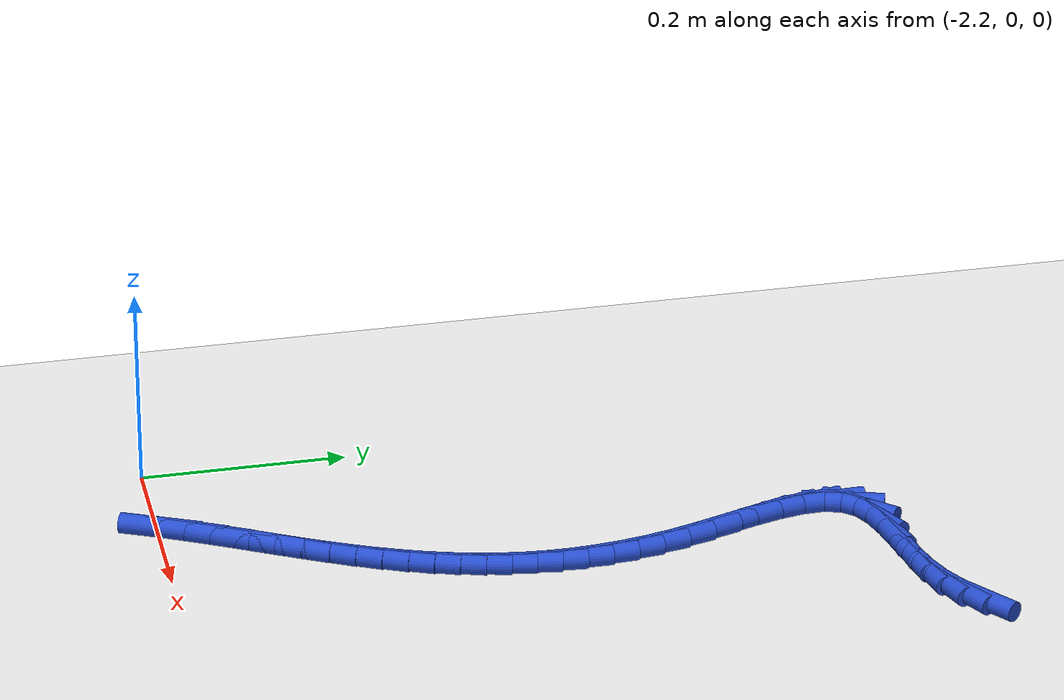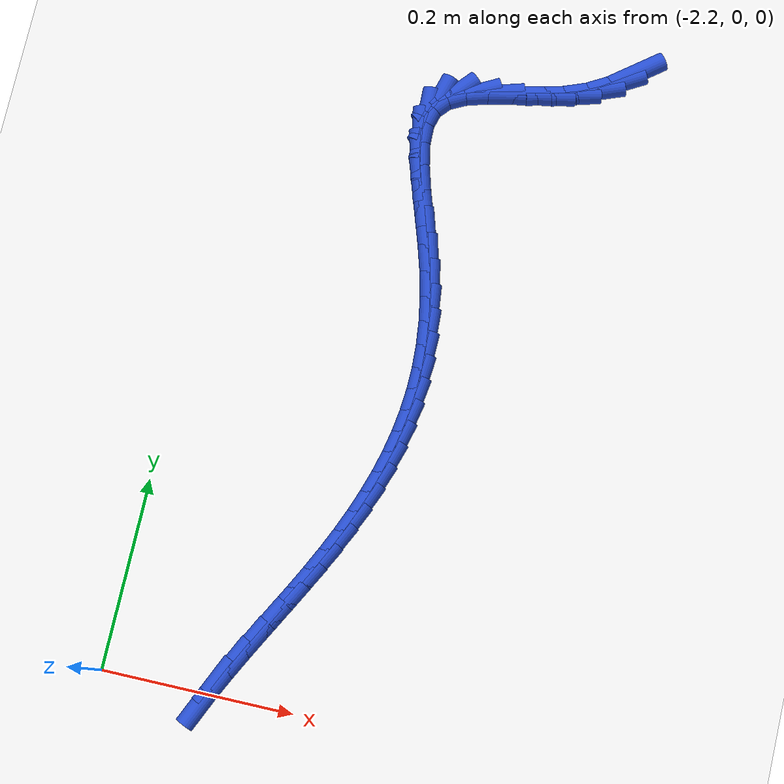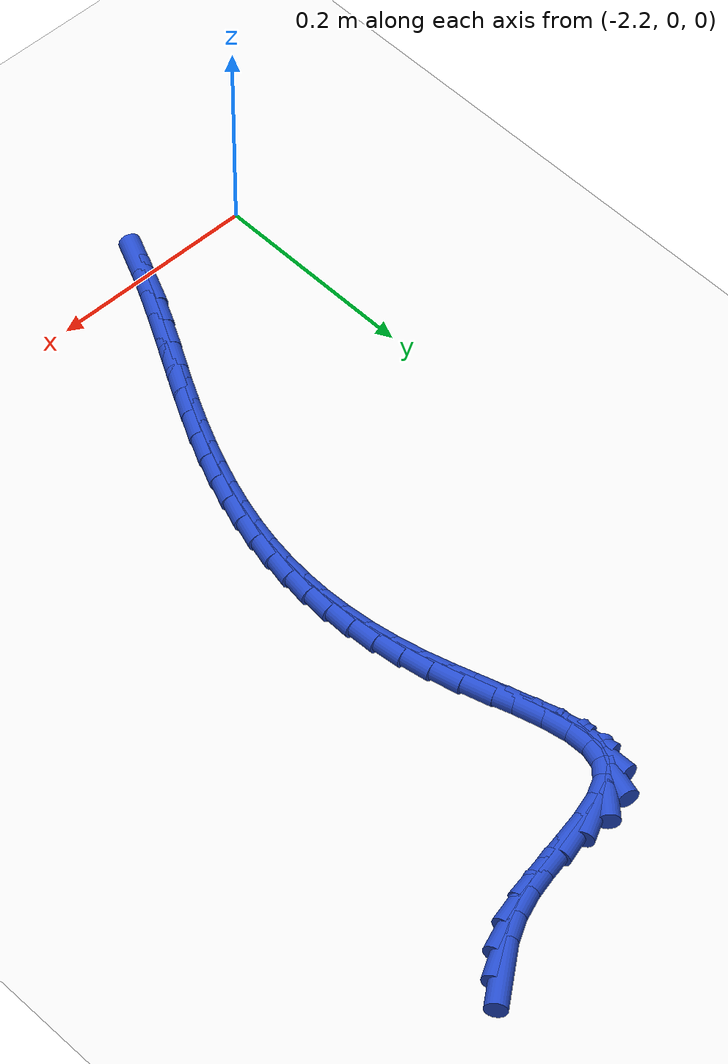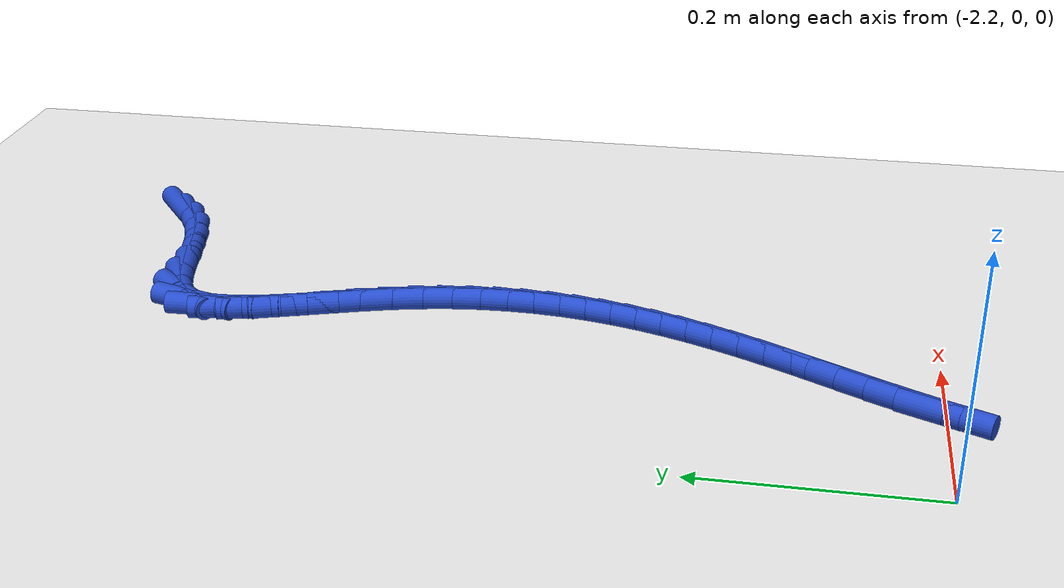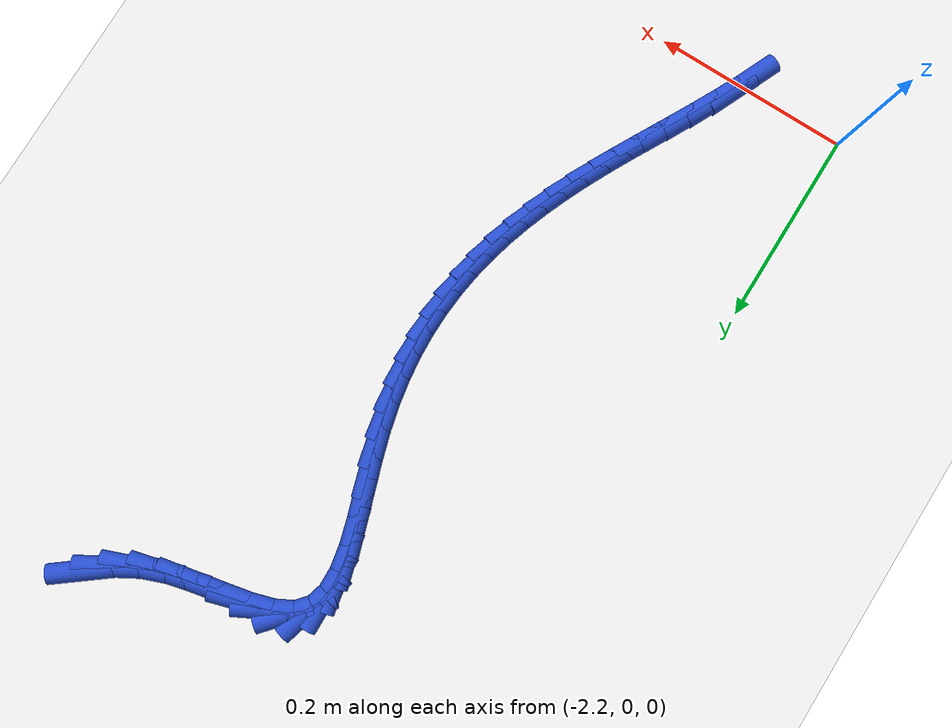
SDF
<sdf version="1.6">
 <world name="default">
  <model name="ground_plane">
   <static>1</static>
   <link name="link">
    <collision name="collision">
     <geometry><plane><normal>0 0 1</normal><size>100 100</size></plane></geometry>
     <surface><friction><ode><mu>100</mu><mu2>50</mu2></ode></friction></surface>
    </collision>
    <visual name="visual">
     <cast_shadows>0</cast_shadows>
     <geometry><plane><normal>0 0 1</normal><size>100 100</size></plane></geometry>
     <material>
      <script><uri>file://media/materials/scripts/gazebo.material</uri><name>Gazebo/WhiteGlow</name></script>
     </material>
    </visual>
   </link>
  </model>
  <model name="line">
   <link name="link_108">
    <pose>-1.8053109952263187 0.7344873514835405 0.01 0 1.57 0.6622374627955402</pose>
    <collision name="collision">
     <geometry><cylinder><radius>0.01</radius><length>0.08</length></cylinder></geometry>
    </collision>
    <visual name="visual">
     <material>
      <script><name>Gazebo/Blue</name><uri>file://media/materials/scripts/gazebo.material</uri></script>
     </material>
     <geometry><cylinder><radius>0.01</radius><length>0.08</length></cylinder></geometry>
    </visual>
   </link>
   <link name="link_109">
    <pose>-1.824508331692607 0.7195192587164501 0.01 0 1.57 0.5204782490880131</pose>
    <collision name="collision">
     <geometry><cylinder><radius>0.01</radius><length>0.08</length></cylinder></geometry>
    </collision>
    <visual name="visual">
     <material>
      <script><name>Gazebo/Blue</name><uri>file://media/materials/scripts/gazebo.material</uri></script>
     </material>
     <geometry><cylinder><radius>0.01</radius><length>0.08</length></cylinder></geometry>
    </visual>
   </link>
   <link name="link_110">
    <pose>-1.8460977314722293 0.7071442787470108 0.01 0 1.57 0.3679591404473845</pose>
    <collision name="collision">
     <geometry><cylinder><radius>0.01</radius><length>0.08</length></cylinder></geometry>
    </collision>
    <visual name="visual">
     <material>
      <script><name>Gazebo/Blue</name><uri>file://media/materials/scripts/gazebo.material</uri></script>
     </material>
     <geometry><cylinder><radius>0.01</radius><length>0.08</length></cylinder></geometry>
    </visual>
   </link>
   <link name="link_111">
    <pose>-1.8704258876636788 0.6977653577108172 0.01 0 1.57 0.24989308642798175</pose>
    <collision name="collision">
     <geometry><cylinder><radius>0.01</radius><length>0.08</length></cylinder></geometry>
    </collision>
    <visual name="visual">
     <material>
      <script><name>Gazebo/Blue</name><uri>file://media/materials/scripts/gazebo.material</uri></script>
     </material>
     <geometry><cylinder><radius>0.01</radius><length>0.08</length></cylinder></geometry>
    </visual>
   </link>
   <link name="link_112">
    <pose>-1.8969097070250405 0.691005944402274 0.01 0 1.57 0.19856480841650992</pose>
    <collision name="collision">
     <geometry><cylinder><radius>0.01</radius><length>0.08</length></cylinder></geometry>
    </collision>
    <visual name="visual">
     <material>
      <script><name>Gazebo/Blue</name><uri>file://media/materials/scripts/gazebo.material</uri></script>
     </material>
     <geometry><cylinder><radius>0.01</radius><length>0.08</length></cylinder></geometry>
    </visual>
   </link>
   <link name="link_113">
    <pose>-1.9238801306113884 0.685579055464513 0.01 0 1.57 0.20812177934216064</pose>
    <collision name="collision">
     <geometry><cylinder><radius>0.01</radius><length>0.08</length></cylinder></geometry>
    </collision>
    <visual name="visual">
     <material>
      <script><name>Gazebo/Blue</name><uri>file://media/materials/scripts/gazebo.material</uri></script>
     </material>
     <geometry><cylinder><radius>0.01</radius><length>0.08</length></cylinder></geometry>
    </visual>
   </link>
   <link name="link_114">
    <pose>-1.949606599198654 0.6801461480565231 0.01 0 1.57 0.28951541255237295</pose>
    <collision name="collision">
     <geometry><cylinder><radius>0.01</radius><length>0.08</length></cylinder></geometry>
    </collision>
    <visual name="visual">
     <material>
      <script><name>Gazebo/Blue</name><uri>file://media/materials/scripts/gazebo.material</uri></script>
     </material>
     <geometry><cylinder><radius>0.01</radius><length>0.08</length></cylinder></geometry>
    </visual>
   </link>
   <link name="link_115">
    <pose>-1.9723585535627683 0.6733686793372937 0.01 0 1.57 0.4828369467160327</pose>
    <collision name="collision">
     <geometry><cylinder><radius>0.01</radius><length>0.08</length></cylinder></geometry>
    </collision>
    <visual name="visual">
     <material>
      <script><name>Gazebo/Blue</name><uri>file://media/materials/scripts/gazebo.material</uri></script>
     </material>
     <geometry><cylinder><radius>0.01</radius><length>0.08</length></cylinder></geometry>
    </visual>
   </link>
   <link name="link_116">
    <pose>-1.9904054344796633 0.6639081064658142 0.01 0 1.57 0.8565495180858365</pose>
    <collision name="collision">
     <geometry><cylinder><radius>0.01</radius><length>0.08</length></cylinder></geometry>
    </collision>
    <visual name="visual">
     <material>
      <script><name>Gazebo/Blue</name><uri>file://media/materials/scripts/gazebo.material</uri></script>
     </material>
     <geometry><cylinder><radius>0.01</radius><length>0.08</length></cylinder></geometry>
    </visual>
   </link>
   <link name="link_117">
    <pose>-2.002064653937652 0.6504594035342619 0.01 0 1.57 1.2988927472984633</pose>
    <collision name="collision">
     <geometry><cylinder><radius>0.01</radius><length>0.08</length></cylinder></geometry>
    </collision>
    <visual name="visual">
     <material>
      <script><name>Gazebo/Blue</name><uri>file://media/materials/scripts/gazebo.material</uri></script>
     </material>
     <geometry><cylinder><radius>0.01</radius><length>0.08</length></cylinder></geometry>
    </visual>
   </link>
   <link name="link_118">
    <pose>-2.0070232431237005 0.6326744817830453 0.01 0 1.57 -1.5465552052424607</pose>
    <collision name="collision">
     <geometry><cylinder><radius>0.01</radius><length>0.08</length></cylinder></geometry>
    </collision>
    <visual name="visual">
     <material>
      <script><name>Gazebo/Blue</name><uri>file://media/materials/scripts/gazebo.material</uri></script>
     </material>
     <geometry><cylinder><radius>0.01</radius><length>0.08</length></cylinder></geometry>
    </visual>
   </link>
   <link name="link_119">
    <pose>-2.0065044816137436 0.6112786114955563 0.01 0 1.57 -1.3795022214706028</pose>
    <collision name="collision">
     <geometry><cylinder><radius>0.01</radius><length>0.08</length></cylinder></geometry>
    </collision>
    <visual name="visual">
     <material>
      <script><name>Gazebo/Blue</name><uri>file://media/materials/scripts/gazebo.material</uri></script>
     </material>
     <geometry><cylinder><radius>0.01</radius><length>0.08</length></cylinder></geometry>
    </visual>
   </link>
   <link name="link_120">
    <pose>-2.001813083800921 0.5870539605233711 0.01 0 1.57 -1.2906239177172265</pose>
    <collision name="collision">
     <geometry><cylinder><radius>0.01</radius><length>0.08</length></cylinder></geometry>
    </collision>
    <visual name="visual">
     <material>
      <script><name>Gazebo/Blue</name><uri>file://media/materials/scripts/gazebo.material</uri></script>
     </material>
     <geometry><cylinder><radius>0.01</radius><length>0.08</length></cylinder></geometry>
    </visual>
   </link>
   <link name="link_121">
    <pose>-1.9942537640783735 0.5607826967180661 0.01 0 1.57 -1.2508786244213406</pose>
    <collision name="collision">
     <geometry><cylinder><radius>0.01</radius><length>0.08</length></cylinder></geometry>
    </collision>
    <visual name="visual">
     <material>
      <script><name>Gazebo/Blue</name><uri>file://media/materials/scripts/gazebo.material</uri></script>
     </material>
     <geometry><cylinder><radius>0.01</radius><length>0.08</length></cylinder></geometry>
    </visual>
   </link>
   <link name="link_122">
    <pose>-1.9851312368392382 0.5332469879312173 0.01 0 1.57 -1.2477071399209498</pose>
    <collision name="collision">
     <geometry><cylinder><radius>0.01</radius><length>0.08</length></cylinder></geometry>
    </collision>
    <visual name="visual">
     <material>
      <script><name>Gazebo/Blue</name><uri>file://media/materials/scripts/gazebo.material</uri></script>
     </material>
     <geometry><cylinder><radius>0.01</radius><length>0.08</length></cylinder></geometry>
    </visual>
   </link>
   <link name="link_123">
    <pose>-1.975750216476657 0.5052290020144008 0.01 0 1.57 -1.2785182778924722</pose>
    <collision name="collision">
     <geometry><cylinder><radius>0.01</radius><length>0.08</length></cylinder></geometry>
    </collision>
    <visual name="visual">
     <material>
      <script><name>Gazebo/Blue</name><uri>file://media/materials/scripts/gazebo.material</uri></script>
     </material>
     <geometry><cylinder><radius>0.01</radius><length>0.08</length></cylinder></geometry>
    </visual>
   </link>
   <link name="link_124">
    <pose>-1.9674087273088567 0.47750677862062396 0.01 0 1.57 -1.3343831985726784</pose>
    <collision name="collision">
     <geometry><cylinder><radius>0.01</radius><length>0.08</length></cylinder></geometry>
    </collision>
    <visual name="visual">
     <material>
      <script><name>Gazebo/Blue</name><uri>file://media/materials/scripts/gazebo.material</uri></script>
     </material>
     <geometry><cylinder><radius>0.01</radius><length>0.08</length></cylinder></geometry>
    </visual>
   </link>
   <link name="link_125">
    <pose>-1.9609159633881825 0.45055671826864624 0.01 0 1.57 -1.3952531316483592</pose>
    <collision name="collision">
     <geometry><cylinder><radius>0.01</radius><length>0.08</length></cylinder></geometry>
    </collision>
    <visual name="visual">
     <material>
      <script><name>Gazebo/Blue</name><uri>file://media/materials/scripts/gazebo.material</uri></script>
     </material>
     <geometry><cylinder><radius>0.01</radius><length>0.08</length></cylinder></geometry>
    </visual>
   </link>
   <link name="link_126">
    <pose>-1.9562683643721357 0.42435370070585493 0.01 0 1.57 -1.4583490908015406</pose>
    <collision name="collision">
     <geometry><cylinder><radius>0.01</radius><length>0.08</length></cylinder></geometry>
    </collision>
    <visual name="visual">
     <material>
      <script><name>Gazebo/Blue</name><uri>file://media/materials/scripts/gazebo.material</uri></script>
     </material>
     <geometry><cylinder><radius>0.01</radius><length>0.08</length></cylinder></geometry>
    </visual>
   </link>
   <link name="link_127">
    <pose>-1.9533855981835822 0.39882523267271464 0.01 0 1.57 -1.522761186719462</pose>
    <collision name="collision">
     <geometry><cylinder><radius>0.01</radius><length>0.08</length></cylinder></geometry>
    </collision>
    <visual name="visual">
     <material>
      <script><name>Gazebo/Blue</name><uri>file://media/materials/scripts/gazebo.material</uri></script>
     </material>
     <geometry><cylinder><radius>0.01</radius><length>0.08</length></cylinder></geometry>
    </visual>
   </link>
   <link name="link_128">
    <pose>-1.9521873327453905 0.3738988209096904 0.01 0 1.57 1.554160334456409</pose>
    <collision name="collision">
     <geometry><cylinder><radius>0.01</radius><length>0.08</length></cylinder></geometry>
    </collision>
    <visual name="visual">
     <material>
      <script><name>Gazebo/Blue</name><uri>file://media/materials/scripts/gazebo.material</uri></script>
     </material>
     <geometry><cylinder><radius>0.01</radius><length>0.08</length></cylinder></geometry>
    </visual>
   </link>
   <link name="link_129">
    <pose>-1.952593235980428 0.3495019721572474 0.01 0 1.57 1.4903621486001504</pose>
    <collision name="collision">
     <geometry><cylinder><radius>0.01</radius><length>0.08</length></cylinder></geometry>
    </collision>
    <visual name="visual">
     <material>
      <script><name>Gazebo/Blue</name><uri>file://media/materials/scripts/gazebo.material</uri></script>
     </material>
     <geometry><cylinder><radius>0.01</radius><length>0.08</length></cylinder></geometry>
    </visual>
   </link>
   <link name="link_130">
    <pose>-1.9545229758115608 0.32556219315585055 0.01 0 1.57 1.4285574912915306</pose>
    <collision name="collision">
     <geometry><cylinder><radius>0.01</radius><length>0.08</length></cylinder></geometry>
    </collision>
    <visual name="visual">
     <material>
      <script><name>Gazebo/Blue</name><uri>file://media/materials/scripts/gazebo.material</uri></script>
     </material>
     <geometry><cylinder><radius>0.01</radius><length>0.08</length></cylinder></geometry>
    </visual>
   </link>
   <link name="link_131">
    <pose>-1.9578962201616572 0.30200699064596487 0.01 0 1.57 1.3697715362862108</pose>
    <collision name="collision">
     <geometry><cylinder><radius>0.01</radius><length>0.08</length></cylinder></geometry>
    </collision>
    <visual name="visual">
     <material>
      <script><name>Gazebo/Blue</name><uri>file://media/materials/scripts/gazebo.material</uri></script>
     </material>
     <geometry><cylinder><radius>0.01</radius><length>0.08</length></cylinder></geometry>
    </visual>
   </link>
   <link name="link_132">
    <pose>-1.9626326369535854 0.2787638713680556 0.01 0 1.57 1.3148677558112576</pose>
    <collision name="collision">
     <geometry><cylinder><radius>0.01</radius><length>0.08</length></cylinder></geometry>
    </collision>
    <visual name="visual">
     <material>
      <script><name>Gazebo/Blue</name><uri>file://media/materials/scripts/gazebo.material</uri></script>
     </material>
     <geometry><cylinder><radius>0.01</radius><length>0.08</length></cylinder></geometry>
    </visual>
   </link>
   <link name="link_133">
    <pose>-1.9686518941102118 0.2557603420625881 0.01 0 1.57 1.2645089504557332</pose>
    <collision name="collision">
     <geometry><cylinder><radius>0.01</radius><length>0.08</length></cylinder></geometry>
    </collision>
    <visual name="visual">
     <material>
      <script><name>Gazebo/Blue</name><uri>file://media/materials/scripts/gazebo.material</uri></script>
     </material>
     <geometry><cylinder><radius>0.01</radius><length>0.08</length></cylinder></geometry>
    </visual>
   </link>
   <link name="link_134">
    <pose>-1.975873659554404 0.23292390947002634 0.01 0 1.57 1.2191472417126001</pose>
    <collision name="collision">
     <geometry><cylinder><radius>0.01</radius><length>0.08</length></cylinder></geometry>
    </collision>
    <visual name="visual">
     <material>
      <script><name>Gazebo/Blue</name><uri>file://media/materials/scripts/gazebo.material</uri></script>
     </material>
     <geometry><cylinder><radius>0.01</radius><length>0.08</length></cylinder></geometry>
    </visual>
   </link>
   <link name="link_135">
    <pose>-1.9842176012090298 0.21018208033083607 0.01 0 1.57 1.1790379566555005</pose>
    <collision name="collision">
     <geometry><cylinder><radius>0.01</radius><length>0.08</length></cylinder></geometry>
    </collision>
    <visual name="visual">
     <material>
      <script><name>Gazebo/Blue</name><uri>file://media/materials/scripts/gazebo.material</uri></script>
     </material>
     <geometry><cylinder><radius>0.01</radius><length>0.08</length></cylinder></geometry>
    </visual>
   </link>
   <link name="link_136">
    <pose>-1.9936033869969563 0.18746236138548222 0.01 0 1.57 1.14426887671455</pose>
    <collision name="collision">
     <geometry><cylinder><radius>0.01</radius><length>0.08</length></cylinder></geometry>
    </collision>
    <visual name="visual">
     <material>
      <script><name>Gazebo/Blue</name><uri>file://media/materials/scripts/gazebo.material</uri></script>
     </material>
     <geometry><cylinder><radius>0.01</radius><length>0.08</length></cylinder></geometry>
    </visual>
   </link>
   <link name="link_137">
    <pose>-2.0039506848410507 0.1646922593744298 0.01 0 1.57 1.114854565920181</pose>
    <collision name="collision">
     <geometry><cylinder><radius>0.01</radius><length>0.08</length></cylinder></geometry>
    </collision>
    <visual name="visual">
     <material>
      <script><name>Gazebo/Blue</name><uri>file://media/materials/scripts/gazebo.material</uri></script>
     </material>
     <geometry><cylinder><radius>0.01</radius><length>0.08</length></cylinder></geometry>
    </visual>
   </link>
   <link name="link_138">
    <pose>-2.0151769302106826 0.14180045059411941 0.01 0 1.57 1.0927075716591927</pose>
    <collision name="collision">
     <geometry><cylinder><radius>0.01</radius><length>0.08</length></cylinder></geometry>
    </collision>
    <visual name="visual">
     <material>
      <script><name>Gazebo/Blue</name><uri>file://media/materials/scripts/gazebo.material</uri></script>
     </material>
     <geometry><cylinder><radius>0.01</radius><length>0.08</length></cylinder></geometry>
    </visual>
   </link>
   <link name="link_139">
    <pose>-2.0271166050104883 0.11875906973213268 0.01 0 1.57 1.0798941115614857</pose>
    <collision name="collision">
     <geometry><cylinder><radius>0.01</radius><length>0.08</length></cylinder></geometry>
    </collision>
    <visual name="visual">
     <material>
      <script><name>Gazebo/Blue</name><uri>file://media/materials/scripts/gazebo.material</uri></script>
     </material>
     <geometry><cylinder><radius>0.01</radius><length>0.08</length></cylinder></geometry>
    </visual>
   </link>
   <link name="link_140">
    <pose>-2.0394985980216243 0.0955955704641702 0.01 0 1.57 1.0760332246816864</pose>
    <collision name="collision">
     <geometry><cylinder><radius>0.01</radius><length>0.08</length></cylinder></geometry>
    </collision>
    <visual name="visual">
     <material>
      <script><name>Gazebo/Blue</name><uri>file://media/materials/scripts/gazebo.material</uri></script>
     </material>
     <geometry><cylinder><radius>0.01</radius><length>0.08</length></cylinder></geometry>
    </visual>
   </link>
   <link name="link_141">
    <pose>-2.0520449548455564 0.07234099152681117 0.01 0 1.57 1.0808956934205314</pose>
    <collision name="collision">
     <geometry><cylinder><radius>0.01</radius><length>0.08</length></cylinder></geometry>
    </collision>
    <visual name="visual">
     <material>
      <script><name>Gazebo/Blue</name><uri>file://media/materials/scripts/gazebo.material</uri></script>
     </material>
     <geometry><cylinder><radius>0.01</radius><length>0.08</length></cylinder></geometry>
    </visual>
   </link>
   <link name="link_142">
    <pose>-2.0644777210837475 0.049026371656636 0.01 0 1.57 1.0945691030506182</pose>
    <collision name="collision">
     <geometry><cylinder><radius>0.01</radius><length>0.08</length></cylinder></geometry>
    </collision>
    <visual name="visual">
     <material>
      <script><name>Gazebo/Blue</name><uri>file://media/materials/scripts/gazebo.material</uri></script>
     </material>
     <geometry><cylinder><radius>0.01</radius><length>0.08</length></cylinder></geometry>
    </visual>
   </link>
   <link name="link_143">
    <pose>-2.0765189423376627 0.02568274959022468 0.01 0 1.57 1.1174513915278907</pose>
    <collision name="collision">
     <geometry><cylinder><radius>0.01</radius><length>0.08</length></cylinder></geometry>
    </collision>
    <visual name="visual">
     <material>
      <script><name>Gazebo/Blue</name><uri>file://media/materials/scripts/gazebo.material</uri></script>
     </material>
     <geometry><cylinder><radius>0.01</radius><length>0.08</length></cylinder></geometry>
    </visual>
   </link>
   <link name="link_144">
    <pose>-2.087890664208767 0.002341164064157209 0.01 0 1.57 1.1502482120976656</pose>
    <collision name="collision">
     <geometry><cylinder><radius>0.01</radius><length>0.08</length></cylinder></geometry>
    </collision>
    <visual name="visual">
     <material>
      <script><name>Gazebo/Blue</name><uri>file://media/materials/scripts/gazebo.material</uri></script>
     </material>
     <geometry><cylinder><radius>0.01</radius><length>0.08</length></cylinder></geometry>
    </visual>
   </link>
  </model>
 </world>
</sdf>
